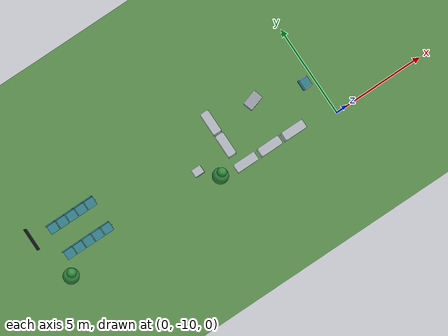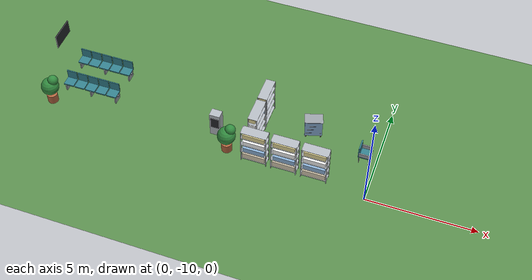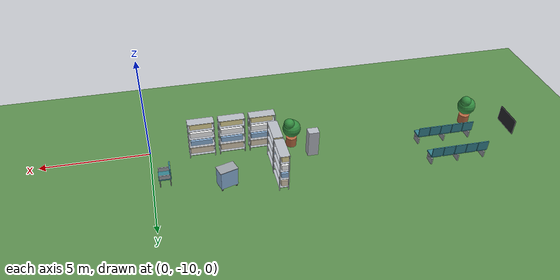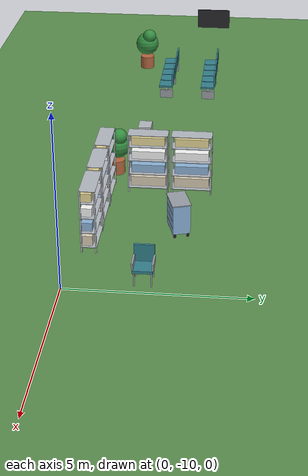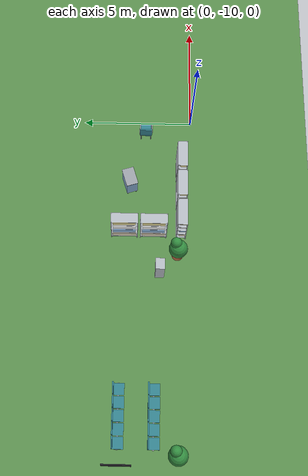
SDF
<sdf version="1.6">
 <world name="hospital">
  <include><uri>model://sun</uri></include>
  <model name="ground_plane">
   <static>true</static>
   <link name="link">
    <collision name="collision">
     <geometry><plane><normal>0 0 1</normal><size>100 100</size></plane></geometry>
     <surface>
      <contact><collide_bitmask>0xffff</collide_bitmask></contact>
      <friction><ode><mu>100</mu><mu2>50</mu2></ode></friction>
     </surface>
    </collision>
    <visual name="visual">
     <cast_shadows>false</cast_shadows>
     <geometry><plane><normal>0 0 1</normal><size>100 100</size></plane></geometry>
     <material>
      <ambient>0.35 0.55 0.3 1</ambient>
      <diffuse>0.35 0.55 0.3 1</diffuse>
      <specular>0 0 0 1</specular>
     </material>
    </visual>
   </link>
  </model>
  <model name="visitor_chair_S2">
   <static>true</static>
   <pose>-0.55 -7.9 0 0 0 1.5708</pose>
   <link name="link">
    <collision name="c0">
     <pose>-0.23 -0.23 0.2 0 0 0</pose>
     <geometry><cylinder><radius>0.02</radius><length>0.4</length></cylinder></geometry>
    </collision>
    <visual name="v0">
     <pose>-0.23 -0.23 0.2 0 0 0</pose>
     <geometry><cylinder><radius>0.02</radius><length>0.4</length></cylinder></geometry>
     <material>
      <ambient>0.6 0.62 0.65 1</ambient>
      <diffuse>0.6 0.62 0.65 1</diffuse>
      <specular>0.1 0.1 0.1 1</specular>
     </material>
    </visual>
    <collision name="c1">
     <pose>-0.23 0.23 0.2 0 0 0</pose>
     <geometry><cylinder><radius>0.02</radius><length>0.4</length></cylinder></geometry>
    </collision>
    <visual name="v1">
     <pose>-0.23 0.23 0.2 0 0 0</pose>
     <geometry><cylinder><radius>0.02</radius><length>0.4</length></cylinder></geometry>
     <material>
      <ambient>0.6 0.62 0.65 1</ambient>
      <diffuse>0.6 0.62 0.65 1</diffuse>
      <specular>0.1 0.1 0.1 1</specular>
     </material>
    </visual>
    <collision name="c2">
     <pose>0.23 -0.23 0.2 0 0 0</pose>
     <geometry><cylinder><radius>0.02</radius><length>0.4</length></cylinder></geometry>
    </collision>
    <visual name="v2">
     <pose>0.23 -0.23 0.2 0 0 0</pose>
     <geometry><cylinder><radius>0.02</radius><length>0.4</length></cylinder></geometry>
     <material>
      <ambient>0.6 0.62 0.65 1</ambient>
      <diffuse>0.6 0.62 0.65 1</diffuse>
      <specular>0.1 0.1 0.1 1</specular>
     </material>
    </visual>
    <collision name="c3">
     <pose>0.23 0.23 0.2 0 0 0</pose>
     <geometry><cylinder><radius>0.02</radius><length>0.4</length></cylinder></geometry>
    </collision>
    <visual name="v3">
     <pose>0.23 0.23 0.2 0 0 0</pose>
     <geometry><cylinder><radius>0.02</radius><length>0.4</length></cylinder></geometry>
     <material>
      <ambient>0.6 0.62 0.65 1</ambient>
      <diffuse>0.6 0.62 0.65 1</diffuse>
      <specular>0.1 0.1 0.1 1</specular>
     </material>
    </visual>
    <visual name="v4">
     <pose>0 0 0.44 0 0 0</pose>
     <geometry><box><size>0.55 0.55 0.08</size></box></geometry>
     <material>
      <ambient>0.2 0.5 0.55 1</ambient>
      <diffuse>0.2 0.5 0.55 1</diffuse>
      <specular>0.1 0.1 0.1 1</specular>
     </material>
    </visual>
    <visual name="v5">
     <pose>0 0.25 0.73 0 0 0</pose>
     <geometry><box><size>0.55 0.06 0.5</size></box></geometry>
     <material>
      <ambient>0.2 0.5 0.55 1</ambient>
      <diffuse>0.2 0.5 0.55 1</diffuse>
      <specular>0.1 0.1 0.1 1</specular>
     </material>
    </visual>
    <visual name="v6">
     <pose>-0.27 0 0.58 0 0 0</pose>
     <geometry><box><size>0.05 0.5 0.2</size></box></geometry>
     <material>
      <ambient>0.6 0.62 0.65 1</ambient>
      <diffuse>0.6 0.62 0.65 1</diffuse>
      <specular>0.1 0.1 0.1 1</specular>
     </material>
    </visual>
    <visual name="v7">
     <pose>0.27 0 0.58 0 0 0</pose>
     <geometry><box><size>0.05 0.5 0.2</size></box></geometry>
     <material>
      <ambient>0.6 0.62 0.65 1</ambient>
      <diffuse>0.6 0.62 0.65 1</diffuse>
      <specular>0.1 0.1 0.1 1</specular>
     </material>
    </visual>
   </link>
  </model>
  <model name="storage_shelf_back_0">
   <static>true</static>
   <pose>-5.2 -9.55 0 0 0 3.1416</pose>
   <link name="link">
    <collision name="c0">
     <pose>-0.58 -0.2 0.95 0 0 0</pose>
     <geometry><box><size>0.04 0.04 1.9</size></box></geometry>
    </collision>
    <visual name="v0">
     <pose>-0.58 -0.2 0.95 0 0 0</pose>
     <geometry><box><size>0.04 0.04 1.9</size></box></geometry>
     <material>
      <ambient>0.7 0.72 0.75 1</ambient>
      <diffuse>0.7 0.72 0.75 1</diffuse>
      <specular>0.1 0.1 0.1 1</specular>
     </material>
    </visual>
    <collision name="c1">
     <pose>-0.58 0.2 0.95 0 0 0</pose>
     <geometry><box><size>0.04 0.04 1.9</size></box></geometry>
    </collision>
    <visual name="v1">
     <pose>-0.58 0.2 0.95 0 0 0</pose>
     <geometry><box><size>0.04 0.04 1.9</size></box></geometry>
     <material>
      <ambient>0.7 0.72 0.75 1</ambient>
      <diffuse>0.7 0.72 0.75 1</diffuse>
      <specular>0.1 0.1 0.1 1</specular>
     </material>
    </visual>
    <collision name="c2">
     <pose>0.58 -0.2 0.95 0 0 0</pose>
     <geometry><box><size>0.04 0.04 1.9</size></box></geometry>
    </collision>
    <visual name="v2">
     <pose>0.58 -0.2 0.95 0 0 0</pose>
     <geometry><box><size>0.04 0.04 1.9</size></box></geometry>
     <material>
      <ambient>0.7 0.72 0.75 1</ambient>
      <diffuse>0.7 0.72 0.75 1</diffuse>
      <specular>0.1 0.1 0.1 1</specular>
     </material>
    </visual>
    <collision name="c3">
     <pose>0.58 0.2 0.95 0 0 0</pose>
     <geometry><box><size>0.04 0.04 1.9</size></box></geometry>
    </collision>
    <visual name="v3">
     <pose>0.58 0.2 0.95 0 0 0</pose>
     <geometry><box><size>0.04 0.04 1.9</size></box></geometry>
     <material>
      <ambient>0.7 0.72 0.75 1</ambient>
      <diffuse>0.7 0.72 0.75 1</diffuse>
      <specular>0.1 0.1 0.1 1</specular>
     </material>
    </visual>
    <collision name="c4">
     <pose>0 0 0.16 0 0 0</pose>
     <geometry><box><size>1.2 0.45 0.02</size></box></geometry>
    </collision>
    <visual name="v4">
     <pose>0 0 0.16 0 0 0</pose>
     <geometry><box><size>1.2 0.45 0.02</size></box></geometry>
     <material>
      <ambient>0.7 0.72 0.75 1</ambient>
      <diffuse>0.7 0.72 0.75 1</diffuse>
      <specular>0.1 0.1 0.1 1</specular>
     </material>
    </visual>
    <visual name="v5">
     <pose>0 0 0.61 0 0 0</pose>
     <geometry><box><size>1.2 0.45 0.02</size></box></geometry>
     <material>
      <ambient>0.7 0.72 0.75 1</ambient>
      <diffuse>0.7 0.72 0.75 1</diffuse>
      <specular>0.1 0.1 0.1 1</specular>
     </material>
    </visual>
    <visual name="v6">
     <pose>0 0 1.06 0 0 0</pose>
     <geometry><box><size>1.2 0.45 0.02</size></box></geometry>
     <material>
      <ambient>0.7 0.72 0.75 1</ambient>
      <diffuse>0.7 0.72 0.75 1</diffuse>
      <specular>0.1 0.1 0.1 1</specular>
     </material>
    </visual>
    <visual name="v7">
     <pose>0 0 1.51 0 0 0</pose>
     <geometry><box><size>1.2 0.45 0.02</size></box></geometry>
     <material>
      <ambient>0.7 0.72 0.75 1</ambient>
      <diffuse>0.7 0.72 0.75 1</diffuse>
      <specular>0.1 0.1 0.1 1</specular>
     </material>
    </visual>
    <visual name="v8">
     <pose>0 0 1.89 0 0 0</pose>
     <geometry><box><size>1.2 0.45 0.02</size></box></geometry>
     <material>
      <ambient>0.7 0.72 0.75 1</ambient>
      <diffuse>0.7 0.72 0.75 1</diffuse>
      <specular>0.1 0.1 0.1 1</specular>
     </material>
    </visual>
    <collision name="c9">
     <pose>0 0.05 0.32 0 0 0</pose>
     <geometry><box><size>1.05 0.3 0.3</size></box></geometry>
    </collision>
    <visual name="v9">
     <pose>0 0.05 0.32 0 0 0</pose>
     <geometry><box><size>1.05 0.3 0.3</size></box></geometry>
     <material>
      <ambient>0.85 0.8 0.7 1</ambient>
      <diffuse>0.85 0.8 0.7 1</diffuse>
      <specular>0.1 0.1 0.1 1</specular>
     </material>
    </visual>
    <visual name="v10">
     <pose>0 0.05 0.745 0 0 0</pose>
     <geometry><box><size>1 0.3 0.25</size></box></geometry>
     <material>
      <ambient>0.55 0.7 0.85 1</ambient>
      <diffuse>0.55 0.7 0.85 1</diffuse>
      <specular>0.1 0.1 0.1 1</specular>
     </material>
    </visual>
    <visual name="v11">
     <pose>0 0.05 1.195 0 0 0</pose>
     <geometry><box><size>1 0.3 0.25</size></box></geometry>
     <material>
      <ambient>0.97 0.97 0.97 1</ambient>
      <diffuse>0.97 0.97 0.97 1</diffuse>
      <specular>0.1 0.1 0.1 1</specular>
     </material>
    </visual>
    <visual name="v12">
     <pose>0 0.05 1.645 0 0 0</pose>
     <geometry><box><size>1 0.3 0.25</size></box></geometry>
     <material>
      <ambient>0.9 0.85 0.6 1</ambient>
      <diffuse>0.9 0.85 0.6 1</diffuse>
      <specular>0.1 0.1 0.1 1</specular>
     </material>
    </visual>
   </link>
  </model>
  <model name="storage_shelf_back_1">
   <static>true</static>
   <pose>-3.8 -9.55 0 0 0 3.1416</pose>
   <link name="link">
    <collision name="c0">
     <pose>-0.58 -0.2 0.95 0 0 0</pose>
     <geometry><box><size>0.04 0.04 1.9</size></box></geometry>
    </collision>
    <visual name="v0">
     <pose>-0.58 -0.2 0.95 0 0 0</pose>
     <geometry><box><size>0.04 0.04 1.9</size></box></geometry>
     <material>
      <ambient>0.7 0.72 0.75 1</ambient>
      <diffuse>0.7 0.72 0.75 1</diffuse>
      <specular>0.1 0.1 0.1 1</specular>
     </material>
    </visual>
    <collision name="c1">
     <pose>-0.58 0.2 0.95 0 0 0</pose>
     <geometry><box><size>0.04 0.04 1.9</size></box></geometry>
    </collision>
    <visual name="v1">
     <pose>-0.58 0.2 0.95 0 0 0</pose>
     <geometry><box><size>0.04 0.04 1.9</size></box></geometry>
     <material>
      <ambient>0.7 0.72 0.75 1</ambient>
      <diffuse>0.7 0.72 0.75 1</diffuse>
      <specular>0.1 0.1 0.1 1</specular>
     </material>
    </visual>
    <collision name="c2">
     <pose>0.58 -0.2 0.95 0 0 0</pose>
     <geometry><box><size>0.04 0.04 1.9</size></box></geometry>
    </collision>
    <visual name="v2">
     <pose>0.58 -0.2 0.95 0 0 0</pose>
     <geometry><box><size>0.04 0.04 1.9</size></box></geometry>
     <material>
      <ambient>0.7 0.72 0.75 1</ambient>
      <diffuse>0.7 0.72 0.75 1</diffuse>
      <specular>0.1 0.1 0.1 1</specular>
     </material>
    </visual>
    <collision name="c3">
     <pose>0.58 0.2 0.95 0 0 0</pose>
     <geometry><box><size>0.04 0.04 1.9</size></box></geometry>
    </collision>
    <visual name="v3">
     <pose>0.58 0.2 0.95 0 0 0</pose>
     <geometry><box><size>0.04 0.04 1.9</size></box></geometry>
     <material>
      <ambient>0.7 0.72 0.75 1</ambient>
      <diffuse>0.7 0.72 0.75 1</diffuse>
      <specular>0.1 0.1 0.1 1</specular>
     </material>
    </visual>
    <collision name="c4">
     <pose>0 0 0.16 0 0 0</pose>
     <geometry><box><size>1.2 0.45 0.02</size></box></geometry>
    </collision>
    <visual name="v4">
     <pose>0 0 0.16 0 0 0</pose>
     <geometry><box><size>1.2 0.45 0.02</size></box></geometry>
     <material>
      <ambient>0.7 0.72 0.75 1</ambient>
      <diffuse>0.7 0.72 0.75 1</diffuse>
      <specular>0.1 0.1 0.1 1</specular>
     </material>
    </visual>
    <visual name="v5">
     <pose>0 0 0.61 0 0 0</pose>
     <geometry><box><size>1.2 0.45 0.02</size></box></geometry>
     <material>
      <ambient>0.7 0.72 0.75 1</ambient>
      <diffuse>0.7 0.72 0.75 1</diffuse>
      <specular>0.1 0.1 0.1 1</specular>
     </material>
    </visual>
    <visual name="v6">
     <pose>0 0 1.06 0 0 0</pose>
     <geometry><box><size>1.2 0.45 0.02</size></box></geometry>
     <material>
      <ambient>0.7 0.72 0.75 1</ambient>
      <diffuse>0.7 0.72 0.75 1</diffuse>
      <specular>0.1 0.1 0.1 1</specular>
     </material>
    </visual>
    <visual name="v7">
     <pose>0 0 1.51 0 0 0</pose>
     <geometry><box><size>1.2 0.45 0.02</size></box></geometry>
     <material>
      <ambient>0.7 0.72 0.75 1</ambient>
      <diffuse>0.7 0.72 0.75 1</diffuse>
      <specular>0.1 0.1 0.1 1</specular>
     </material>
    </visual>
    <visual name="v8">
     <pose>0 0 1.89 0 0 0</pose>
     <geometry><box><size>1.2 0.45 0.02</size></box></geometry>
     <material>
      <ambient>0.7 0.72 0.75 1</ambient>
      <diffuse>0.7 0.72 0.75 1</diffuse>
      <specular>0.1 0.1 0.1 1</specular>
     </material>
    </visual>
    <collision name="c9">
     <pose>0 0.05 0.32 0 0 0</pose>
     <geometry><box><size>1.05 0.3 0.3</size></box></geometry>
    </collision>
    <visual name="v9">
     <pose>0 0.05 0.32 0 0 0</pose>
     <geometry><box><size>1.05 0.3 0.3</size></box></geometry>
     <material>
      <ambient>0.85 0.8 0.7 1</ambient>
      <diffuse>0.85 0.8 0.7 1</diffuse>
      <specular>0.1 0.1 0.1 1</specular>
     </material>
    </visual>
    <visual name="v10">
     <pose>0 0.05 0.745 0 0 0</pose>
     <geometry><box><size>1 0.3 0.25</size></box></geometry>
     <material>
      <ambient>0.55 0.7 0.85 1</ambient>
      <diffuse>0.55 0.7 0.85 1</diffuse>
      <specular>0.1 0.1 0.1 1</specular>
     </material>
    </visual>
    <visual name="v11">
     <pose>0 0.05 1.195 0 0 0</pose>
     <geometry><box><size>1 0.3 0.25</size></box></geometry>
     <material>
      <ambient>0.97 0.97 0.97 1</ambient>
      <diffuse>0.97 0.97 0.97 1</diffuse>
      <specular>0.1 0.1 0.1 1</specular>
     </material>
    </visual>
    <visual name="v12">
     <pose>0 0.05 1.645 0 0 0</pose>
     <geometry><box><size>1 0.3 0.25</size></box></geometry>
     <material>
      <ambient>0.9 0.85 0.6 1</ambient>
      <diffuse>0.9 0.85 0.6 1</diffuse>
      <specular>0.1 0.1 0.1 1</specular>
     </material>
    </visual>
   </link>
  </model>
  <model name="storage_shelf_back_2">
   <static>true</static>
   <pose>-2.4 -9.55 0 0 0 3.1416</pose>
   <link name="link">
    <collision name="c0">
     <pose>-0.58 -0.2 0.95 0 0 0</pose>
     <geometry><box><size>0.04 0.04 1.9</size></box></geometry>
    </collision>
    <visual name="v0">
     <pose>-0.58 -0.2 0.95 0 0 0</pose>
     <geometry><box><size>0.04 0.04 1.9</size></box></geometry>
     <material>
      <ambient>0.7 0.72 0.75 1</ambient>
      <diffuse>0.7 0.72 0.75 1</diffuse>
      <specular>0.1 0.1 0.1 1</specular>
     </material>
    </visual>
    <collision name="c1">
     <pose>-0.58 0.2 0.95 0 0 0</pose>
     <geometry><box><size>0.04 0.04 1.9</size></box></geometry>
    </collision>
    <visual name="v1">
     <pose>-0.58 0.2 0.95 0 0 0</pose>
     <geometry><box><size>0.04 0.04 1.9</size></box></geometry>
     <material>
      <ambient>0.7 0.72 0.75 1</ambient>
      <diffuse>0.7 0.72 0.75 1</diffuse>
      <specular>0.1 0.1 0.1 1</specular>
     </material>
    </visual>
    <collision name="c2">
     <pose>0.58 -0.2 0.95 0 0 0</pose>
     <geometry><box><size>0.04 0.04 1.9</size></box></geometry>
    </collision>
    <visual name="v2">
     <pose>0.58 -0.2 0.95 0 0 0</pose>
     <geometry><box><size>0.04 0.04 1.9</size></box></geometry>
     <material>
      <ambient>0.7 0.72 0.75 1</ambient>
      <diffuse>0.7 0.72 0.75 1</diffuse>
      <specular>0.1 0.1 0.1 1</specular>
     </material>
    </visual>
    <collision name="c3">
     <pose>0.58 0.2 0.95 0 0 0</pose>
     <geometry><box><size>0.04 0.04 1.9</size></box></geometry>
    </collision>
    <visual name="v3">
     <pose>0.58 0.2 0.95 0 0 0</pose>
     <geometry><box><size>0.04 0.04 1.9</size></box></geometry>
     <material>
      <ambient>0.7 0.72 0.75 1</ambient>
      <diffuse>0.7 0.72 0.75 1</diffuse>
      <specular>0.1 0.1 0.1 1</specular>
     </material>
    </visual>
    <collision name="c4">
     <pose>0 0 0.16 0 0 0</pose>
     <geometry><box><size>1.2 0.45 0.02</size></box></geometry>
    </collision>
    <visual name="v4">
     <pose>0 0 0.16 0 0 0</pose>
     <geometry><box><size>1.2 0.45 0.02</size></box></geometry>
     <material>
      <ambient>0.7 0.72 0.75 1</ambient>
      <diffuse>0.7 0.72 0.75 1</diffuse>
      <specular>0.1 0.1 0.1 1</specular>
     </material>
    </visual>
    <visual name="v5">
     <pose>0 0 0.61 0 0 0</pose>
     <geometry><box><size>1.2 0.45 0.02</size></box></geometry>
     <material>
      <ambient>0.7 0.72 0.75 1</ambient>
      <diffuse>0.7 0.72 0.75 1</diffuse>
      <specular>0.1 0.1 0.1 1</specular>
     </material>
    </visual>
    <visual name="v6">
     <pose>0 0 1.06 0 0 0</pose>
     <geometry><box><size>1.2 0.45 0.02</size></box></geometry>
     <material>
      <ambient>0.7 0.72 0.75 1</ambient>
      <diffuse>0.7 0.72 0.75 1</diffuse>
      <specular>0.1 0.1 0.1 1</specular>
     </material>
    </visual>
    <visual name="v7">
     <pose>0 0 1.51 0 0 0</pose>
     <geometry><box><size>1.2 0.45 0.02</size></box></geometry>
     <material>
      <ambient>0.7 0.72 0.75 1</ambient>
      <diffuse>0.7 0.72 0.75 1</diffuse>
      <specular>0.1 0.1 0.1 1</specular>
     </material>
    </visual>
    <visual name="v8">
     <pose>0 0 1.89 0 0 0</pose>
     <geometry><box><size>1.2 0.45 0.02</size></box></geometry>
     <material>
      <ambient>0.7 0.72 0.75 1</ambient>
      <diffuse>0.7 0.72 0.75 1</diffuse>
      <specular>0.1 0.1 0.1 1</specular>
     </material>
    </visual>
    <collision name="c9">
     <pose>0 0.05 0.32 0 0 0</pose>
     <geometry><box><size>1.05 0.3 0.3</size></box></geometry>
    </collision>
    <visual name="v9">
     <pose>0 0.05 0.32 0 0 0</pose>
     <geometry><box><size>1.05 0.3 0.3</size></box></geometry>
     <material>
      <ambient>0.85 0.8 0.7 1</ambient>
      <diffuse>0.85 0.8 0.7 1</diffuse>
      <specular>0.1 0.1 0.1 1</specular>
     </material>
    </visual>
    <visual name="v10">
     <pose>0 0.05 0.745 0 0 0</pose>
     <geometry><box><size>1 0.3 0.25</size></box></geometry>
     <material>
      <ambient>0.55 0.7 0.85 1</ambient>
      <diffuse>0.55 0.7 0.85 1</diffuse>
      <specular>0.1 0.1 0.1 1</specular>
     </material>
    </visual>
    <visual name="v11">
     <pose>0 0.05 1.195 0 0 0</pose>
     <geometry><box><size>1 0.3 0.25</size></box></geometry>
     <material>
      <ambient>0.97 0.97 0.97 1</ambient>
      <diffuse>0.97 0.97 0.97 1</diffuse>
      <specular>0.1 0.1 0.1 1</specular>
     </material>
    </visual>
    <visual name="v12">
     <pose>0 0.05 1.645 0 0 0</pose>
     <geometry><box><size>1 0.3 0.25</size></box></geometry>
     <material>
      <ambient>0.9 0.85 0.6 1</ambient>
      <diffuse>0.9 0.85 0.6 1</diffuse>
      <specular>0.1 0.1 0.1 1</specular>
     </material>
    </visual>
   </link>
  </model>
  <model name="storage_shelf_side_0">
   <static>true</static>
   <pose>-5.55 -8.3 0 0 0 1.5708</pose>
   <link name="link">
    <collision name="c0">
     <pose>-0.58 -0.2 0.95 0 0 0</pose>
     <geometry><box><size>0.04 0.04 1.9</size></box></geometry>
    </collision>
    <visual name="v0">
     <pose>-0.58 -0.2 0.95 0 0 0</pose>
     <geometry><box><size>0.04 0.04 1.9</size></box></geometry>
     <material>
      <ambient>0.7 0.72 0.75 1</ambient>
      <diffuse>0.7 0.72 0.75 1</diffuse>
      <specular>0.1 0.1 0.1 1</specular>
     </material>
    </visual>
    <collision name="c1">
     <pose>-0.58 0.2 0.95 0 0 0</pose>
     <geometry><box><size>0.04 0.04 1.9</size></box></geometry>
    </collision>
    <visual name="v1">
     <pose>-0.58 0.2 0.95 0 0 0</pose>
     <geometry><box><size>0.04 0.04 1.9</size></box></geometry>
     <material>
      <ambient>0.7 0.72 0.75 1</ambient>
      <diffuse>0.7 0.72 0.75 1</diffuse>
      <specular>0.1 0.1 0.1 1</specular>
     </material>
    </visual>
    <collision name="c2">
     <pose>0.58 -0.2 0.95 0 0 0</pose>
     <geometry><box><size>0.04 0.04 1.9</size></box></geometry>
    </collision>
    <visual name="v2">
     <pose>0.58 -0.2 0.95 0 0 0</pose>
     <geometry><box><size>0.04 0.04 1.9</size></box></geometry>
     <material>
      <ambient>0.7 0.72 0.75 1</ambient>
      <diffuse>0.7 0.72 0.75 1</diffuse>
      <specular>0.1 0.1 0.1 1</specular>
     </material>
    </visual>
    <collision name="c3">
     <pose>0.58 0.2 0.95 0 0 0</pose>
     <geometry><box><size>0.04 0.04 1.9</size></box></geometry>
    </collision>
    <visual name="v3">
     <pose>0.58 0.2 0.95 0 0 0</pose>
     <geometry><box><size>0.04 0.04 1.9</size></box></geometry>
     <material>
      <ambient>0.7 0.72 0.75 1</ambient>
      <diffuse>0.7 0.72 0.75 1</diffuse>
      <specular>0.1 0.1 0.1 1</specular>
     </material>
    </visual>
    <collision name="c4">
     <pose>0 0 0.16 0 0 0</pose>
     <geometry><box><size>1.2 0.45 0.02</size></box></geometry>
    </collision>
    <visual name="v4">
     <pose>0 0 0.16 0 0 0</pose>
     <geometry><box><size>1.2 0.45 0.02</size></box></geometry>
     <material>
      <ambient>0.7 0.72 0.75 1</ambient>
      <diffuse>0.7 0.72 0.75 1</diffuse>
      <specular>0.1 0.1 0.1 1</specular>
     </material>
    </visual>
    <visual name="v5">
     <pose>0 0 0.61 0 0 0</pose>
     <geometry><box><size>1.2 0.45 0.02</size></box></geometry>
     <material>
      <ambient>0.7 0.72 0.75 1</ambient>
      <diffuse>0.7 0.72 0.75 1</diffuse>
      <specular>0.1 0.1 0.1 1</specular>
     </material>
    </visual>
    <visual name="v6">
     <pose>0 0 1.06 0 0 0</pose>
     <geometry><box><size>1.2 0.45 0.02</size></box></geometry>
     <material>
      <ambient>0.7 0.72 0.75 1</ambient>
      <diffuse>0.7 0.72 0.75 1</diffuse>
      <specular>0.1 0.1 0.1 1</specular>
     </material>
    </visual>
    <visual name="v7">
     <pose>0 0 1.51 0 0 0</pose>
     <geometry><box><size>1.2 0.45 0.02</size></box></geometry>
     <material>
      <ambient>0.7 0.72 0.75 1</ambient>
      <diffuse>0.7 0.72 0.75 1</diffuse>
      <specular>0.1 0.1 0.1 1</specular>
     </material>
    </visual>
    <visual name="v8">
     <pose>0 0 1.89 0 0 0</pose>
     <geometry><box><size>1.2 0.45 0.02</size></box></geometry>
     <material>
      <ambient>0.7 0.72 0.75 1</ambient>
      <diffuse>0.7 0.72 0.75 1</diffuse>
      <specular>0.1 0.1 0.1 1</specular>
     </material>
    </visual>
    <collision name="c9">
     <pose>0 0.05 0.32 0 0 0</pose>
     <geometry><box><size>1.05 0.3 0.3</size></box></geometry>
    </collision>
    <visual name="v9">
     <pose>0 0.05 0.32 0 0 0</pose>
     <geometry><box><size>1.05 0.3 0.3</size></box></geometry>
     <material>
      <ambient>0.85 0.8 0.7 1</ambient>
      <diffuse>0.85 0.8 0.7 1</diffuse>
      <specular>0.1 0.1 0.1 1</specular>
     </material>
    </visual>
    <visual name="v10">
     <pose>0 0.05 0.745 0 0 0</pose>
     <geometry><box><size>1 0.3 0.25</size></box></geometry>
     <material>
      <ambient>0.55 0.7 0.85 1</ambient>
      <diffuse>0.55 0.7 0.85 1</diffuse>
      <specular>0.1 0.1 0.1 1</specular>
     </material>
    </visual>
    <visual name="v11">
     <pose>0 0.05 1.195 0 0 0</pose>
     <geometry><box><size>1 0.3 0.25</size></box></geometry>
     <material>
      <ambient>0.97 0.97 0.97 1</ambient>
      <diffuse>0.97 0.97 0.97 1</diffuse>
      <specular>0.1 0.1 0.1 1</specular>
     </material>
    </visual>
    <visual name="v12">
     <pose>0 0.05 1.645 0 0 0</pose>
     <geometry><box><size>1 0.3 0.25</size></box></geometry>
     <material>
      <ambient>0.9 0.85 0.6 1</ambient>
      <diffuse>0.9 0.85 0.6 1</diffuse>
      <specular>0.1 0.1 0.1 1</specular>
     </material>
    </visual>
   </link>
  </model>
  <model name="storage_shelf_side_1">
   <static>true</static>
   <pose>-5.55 -7 0 0 0 1.5708</pose>
   <link name="link">
    <collision name="c0">
     <pose>-0.58 -0.2 0.95 0 0 0</pose>
     <geometry><box><size>0.04 0.04 1.9</size></box></geometry>
    </collision>
    <visual name="v0">
     <pose>-0.58 -0.2 0.95 0 0 0</pose>
     <geometry><box><size>0.04 0.04 1.9</size></box></geometry>
     <material>
      <ambient>0.7 0.72 0.75 1</ambient>
      <diffuse>0.7 0.72 0.75 1</diffuse>
      <specular>0.1 0.1 0.1 1</specular>
     </material>
    </visual>
    <collision name="c1">
     <pose>-0.58 0.2 0.95 0 0 0</pose>
     <geometry><box><size>0.04 0.04 1.9</size></box></geometry>
    </collision>
    <visual name="v1">
     <pose>-0.58 0.2 0.95 0 0 0</pose>
     <geometry><box><size>0.04 0.04 1.9</size></box></geometry>
     <material>
      <ambient>0.7 0.72 0.75 1</ambient>
      <diffuse>0.7 0.72 0.75 1</diffuse>
      <specular>0.1 0.1 0.1 1</specular>
     </material>
    </visual>
    <collision name="c2">
     <pose>0.58 -0.2 0.95 0 0 0</pose>
     <geometry><box><size>0.04 0.04 1.9</size></box></geometry>
    </collision>
    <visual name="v2">
     <pose>0.58 -0.2 0.95 0 0 0</pose>
     <geometry><box><size>0.04 0.04 1.9</size></box></geometry>
     <material>
      <ambient>0.7 0.72 0.75 1</ambient>
      <diffuse>0.7 0.72 0.75 1</diffuse>
      <specular>0.1 0.1 0.1 1</specular>
     </material>
    </visual>
    <collision name="c3">
     <pose>0.58 0.2 0.95 0 0 0</pose>
     <geometry><box><size>0.04 0.04 1.9</size></box></geometry>
    </collision>
    <visual name="v3">
     <pose>0.58 0.2 0.95 0 0 0</pose>
     <geometry><box><size>0.04 0.04 1.9</size></box></geometry>
     <material>
      <ambient>0.7 0.72 0.75 1</ambient>
      <diffuse>0.7 0.72 0.75 1</diffuse>
      <specular>0.1 0.1 0.1 1</specular>
     </material>
    </visual>
    <collision name="c4">
     <pose>0 0 0.16 0 0 0</pose>
     <geometry><box><size>1.2 0.45 0.02</size></box></geometry>
    </collision>
    <visual name="v4">
     <pose>0 0 0.16 0 0 0</pose>
     <geometry><box><size>1.2 0.45 0.02</size></box></geometry>
     <material>
      <ambient>0.7 0.72 0.75 1</ambient>
      <diffuse>0.7 0.72 0.75 1</diffuse>
      <specular>0.1 0.1 0.1 1</specular>
     </material>
    </visual>
    <visual name="v5">
     <pose>0 0 0.61 0 0 0</pose>
     <geometry><box><size>1.2 0.45 0.02</size></box></geometry>
     <material>
      <ambient>0.7 0.72 0.75 1</ambient>
      <diffuse>0.7 0.72 0.75 1</diffuse>
      <specular>0.1 0.1 0.1 1</specular>
     </material>
    </visual>
    <visual name="v6">
     <pose>0 0 1.06 0 0 0</pose>
     <geometry><box><size>1.2 0.45 0.02</size></box></geometry>
     <material>
      <ambient>0.7 0.72 0.75 1</ambient>
      <diffuse>0.7 0.72 0.75 1</diffuse>
      <specular>0.1 0.1 0.1 1</specular>
     </material>
    </visual>
    <visual name="v7">
     <pose>0 0 1.51 0 0 0</pose>
     <geometry><box><size>1.2 0.45 0.02</size></box></geometry>
     <material>
      <ambient>0.7 0.72 0.75 1</ambient>
      <diffuse>0.7 0.72 0.75 1</diffuse>
      <specular>0.1 0.1 0.1 1</specular>
     </material>
    </visual>
    <visual name="v8">
     <pose>0 0 1.89 0 0 0</pose>
     <geometry><box><size>1.2 0.45 0.02</size></box></geometry>
     <material>
      <ambient>0.7 0.72 0.75 1</ambient>
      <diffuse>0.7 0.72 0.75 1</diffuse>
      <specular>0.1 0.1 0.1 1</specular>
     </material>
    </visual>
    <collision name="c9">
     <pose>0 0.05 0.32 0 0 0</pose>
     <geometry><box><size>1.05 0.3 0.3</size></box></geometry>
    </collision>
    <visual name="v9">
     <pose>0 0.05 0.32 0 0 0</pose>
     <geometry><box><size>1.05 0.3 0.3</size></box></geometry>
     <material>
      <ambient>0.85 0.8 0.7 1</ambient>
      <diffuse>0.85 0.8 0.7 1</diffuse>
      <specular>0.1 0.1 0.1 1</specular>
     </material>
    </visual>
    <visual name="v10">
     <pose>0 0.05 0.745 0 0 0</pose>
     <geometry><box><size>1 0.3 0.25</size></box></geometry>
     <material>
      <ambient>0.55 0.7 0.85 1</ambient>
      <diffuse>0.55 0.7 0.85 1</diffuse>
      <specular>0.1 0.1 0.1 1</specular>
     </material>
    </visual>
    <visual name="v11">
     <pose>0 0.05 1.195 0 0 0</pose>
     <geometry><box><size>1 0.3 0.25</size></box></geometry>
     <material>
      <ambient>0.97 0.97 0.97 1</ambient>
      <diffuse>0.97 0.97 0.97 1</diffuse>
      <specular>0.1 0.1 0.1 1</specular>
     </material>
    </visual>
    <visual name="v12">
     <pose>0 0.05 1.645 0 0 0</pose>
     <geometry><box><size>1 0.3 0.25</size></box></geometry>
     <material>
      <ambient>0.9 0.85 0.6 1</ambient>
      <diffuse>0.9 0.85 0.6 1</diffuse>
      <specular>0.1 0.1 0.1 1</specular>
     </material>
    </visual>
   </link>
  </model>
  <model name="supply_cart_S1">
   <static>true</static>
   <pose>-3.2 -7.2 0 0 0 0.3</pose>
   <link name="link">
    <collision name="c0">
     <pose>-0.34 -0.19 0.06 0 0 0</pose>
     <geometry><cylinder><radius>0.04</radius><length>0.12</length></cylinder></geometry>
    </collision>
    <visual name="v0">
     <pose>-0.34 -0.19 0.06 0 0 0</pose>
     <geometry><cylinder><radius>0.04</radius><length>0.12</length></cylinder></geometry>
     <material>
      <ambient>0.15 0.15 0.17 1</ambient>
      <diffuse>0.15 0.15 0.17 1</diffuse>
      <specular>0.1 0.1 0.1 1</specular>
     </material>
    </visual>
    <collision name="c1">
     <pose>-0.34 0.19 0.06 0 0 0</pose>
     <geometry><cylinder><radius>0.04</radius><length>0.12</length></cylinder></geometry>
    </collision>
    <visual name="v1">
     <pose>-0.34 0.19 0.06 0 0 0</pose>
     <geometry><cylinder><radius>0.04</radius><length>0.12</length></cylinder></geometry>
     <material>
      <ambient>0.15 0.15 0.17 1</ambient>
      <diffuse>0.15 0.15 0.17 1</diffuse>
      <specular>0.1 0.1 0.1 1</specular>
     </material>
    </visual>
    <collision name="c2">
     <pose>0.34 -0.19 0.06 0 0 0</pose>
     <geometry><cylinder><radius>0.04</radius><length>0.12</length></cylinder></geometry>
    </collision>
    <visual name="v2">
     <pose>0.34 -0.19 0.06 0 0 0</pose>
     <geometry><cylinder><radius>0.04</radius><length>0.12</length></cylinder></geometry>
     <material>
      <ambient>0.15 0.15 0.17 1</ambient>
      <diffuse>0.15 0.15 0.17 1</diffuse>
      <specular>0.1 0.1 0.1 1</specular>
     </material>
    </visual>
    <collision name="c3">
     <pose>0.34 0.19 0.06 0 0 0</pose>
     <geometry><cylinder><radius>0.04</radius><length>0.12</length></cylinder></geometry>
    </collision>
    <visual name="v3">
     <pose>0.34 0.19 0.06 0 0 0</pose>
     <geometry><cylinder><radius>0.04</radius><length>0.12</length></cylinder></geometry>
     <material>
      <ambient>0.15 0.15 0.17 1</ambient>
      <diffuse>0.15 0.15 0.17 1</diffuse>
      <specular>0.1 0.1 0.1 1</specular>
     </material>
    </visual>
    <collision name="c4">
     <pose>0 0 0.56 0 0 0</pose>
     <geometry><box><size>0.8 0.5 0.88</size></box></geometry>
    </collision>
    <visual name="v4">
     <pose>0 0 0.56 0 0 0</pose>
     <geometry><box><size>0.8 0.5 0.88</size></box></geometry>
     <material>
      <ambient>0.55 0.7 0.85 1</ambient>
      <diffuse>0.55 0.7 0.85 1</diffuse>
      <specular>0.1 0.1 0.1 1</specular>
     </material>
    </visual>
    <visual name="v5">
     <pose>0 0 1.015 0 0 0</pose>
     <geometry><box><size>0.84 0.54 0.03</size></box></geometry>
     <material>
      <ambient>0.6 0.62 0.65 1</ambient>
      <diffuse>0.6 0.62 0.65 1</diffuse>
      <specular>0.1 0.1 0.1 1</specular>
     </material>
    </visual>
    <visual name="v6">
     <pose>0 -0.253 0.305 0 0 0</pose>
     <geometry><box><size>0.7 0.005 0.01</size></box></geometry>
     <material>
      <ambient>0.15 0.15 0.17 1</ambient>
      <diffuse>0.15 0.15 0.17 1</diffuse>
      <specular>0.1 0.1 0.1 1</specular>
     </material>
    </visual>
    <visual name="v7">
     <pose>0 -0.253 0.525 0 0 0</pose>
     <geometry><box><size>0.7 0.005 0.01</size></box></geometry>
     <material>
      <ambient>0.15 0.15 0.17 1</ambient>
      <diffuse>0.15 0.15 0.17 1</diffuse>
      <specular>0.1 0.1 0.1 1</specular>
     </material>
    </visual>
    <visual name="v8">
     <pose>0 -0.253 0.745 0 0 0</pose>
     <geometry><box><size>0.7 0.005 0.01</size></box></geometry>
     <material>
      <ambient>0.15 0.15 0.17 1</ambient>
      <diffuse>0.15 0.15 0.17 1</diffuse>
      <specular>0.1 0.1 0.1 1</specular>
     </material>
    </visual>
   </link>
  </model>
  <model name="waiting_seats_0">
   <static>true</static>
   <pose>-13.8 -8.4 0 0 0 0</pose>
   <link name="link">
    <collision name="c0">
     <pose>0 0 0.33 0 0 0</pose>
     <geometry><box><size>2.75 0.08 0.06</size></box></geometry>
    </collision>
    <visual name="v0">
     <pose>0 0 0.33 0 0 0</pose>
     <geometry><box><size>2.75 0.08 0.06</size></box></geometry>
     <material>
      <ambient>0.6 0.62 0.65 1</ambient>
      <diffuse>0.6 0.62 0.65 1</diffuse>
      <specular>0.1 0.1 0.1 1</specular>
     </material>
    </visual>
    <collision name="c1">
     <pose>-1.275 0 0.15 0 0 0</pose>
     <geometry><box><size>0.06 0.45 0.3</size></box></geometry>
    </collision>
    <visual name="v1">
     <pose>-1.275 0 0.15 0 0 0</pose>
     <geometry><box><size>0.06 0.45 0.3</size></box></geometry>
     <material>
      <ambient>0.6 0.62 0.65 1</ambient>
      <diffuse>0.6 0.62 0.65 1</diffuse>
      <specular>0.1 0.1 0.1 1</specular>
     </material>
    </visual>
    <collision name="c2">
     <pose>0 0 0.15 0 0 0</pose>
     <geometry><box><size>0.06 0.45 0.3</size></box></geometry>
    </collision>
    <visual name="v2">
     <pose>0 0 0.15 0 0 0</pose>
     <geometry><box><size>0.06 0.45 0.3</size></box></geometry>
     <material>
      <ambient>0.6 0.62 0.65 1</ambient>
      <diffuse>0.6 0.62 0.65 1</diffuse>
      <specular>0.1 0.1 0.1 1</specular>
     </material>
    </visual>
    <collision name="c3">
     <pose>1.275 0 0.15 0 0 0</pose>
     <geometry><box><size>0.06 0.45 0.3</size></box></geometry>
    </collision>
    <visual name="v3">
     <pose>1.275 0 0.15 0 0 0</pose>
     <geometry><box><size>0.06 0.45 0.3</size></box></geometry>
     <material>
      <ambient>0.6 0.62 0.65 1</ambient>
      <diffuse>0.6 0.62 0.65 1</diffuse>
      <specular>0.1 0.1 0.1 1</specular>
     </material>
    </visual>
    <visual name="v4">
     <pose>-1.1 -0.02 0.435 0 0 0</pose>
     <geometry><box><size>0.5 0.48 0.07</size></box></geometry>
     <material>
      <ambient>0.2 0.5 0.55 1</ambient>
      <diffuse>0.2 0.5 0.55 1</diffuse>
      <specular>0.1 0.1 0.1 1</specular>
     </material>
    </visual>
    <visual name="v5">
     <pose>-1.1 0.22 0.695 0 0 0</pose>
     <geometry><box><size>0.5 0.05 0.45</size></box></geometry>
     <material>
      <ambient>0.2 0.5 0.55 1</ambient>
      <diffuse>0.2 0.5 0.55 1</diffuse>
      <specular>0.1 0.1 0.1 1</specular>
     </material>
    </visual>
    <visual name="v6">
     <pose>-0.55 -0.02 0.435 0 0 0</pose>
     <geometry><box><size>0.5 0.48 0.07</size></box></geometry>
     <material>
      <ambient>0.2 0.5 0.55 1</ambient>
      <diffuse>0.2 0.5 0.55 1</diffuse>
      <specular>0.1 0.1 0.1 1</specular>
     </material>
    </visual>
    <visual name="v7">
     <pose>-0.55 0.22 0.695 0 0 0</pose>
     <geometry><box><size>0.5 0.05 0.45</size></box></geometry>
     <material>
      <ambient>0.2 0.5 0.55 1</ambient>
      <diffuse>0.2 0.5 0.55 1</diffuse>
      <specular>0.1 0.1 0.1 1</specular>
     </material>
    </visual>
    <visual name="v8">
     <pose>0 -0.02 0.435 0 0 0</pose>
     <geometry><box><size>0.5 0.48 0.07</size></box></geometry>
     <material>
      <ambient>0.2 0.5 0.55 1</ambient>
      <diffuse>0.2 0.5 0.55 1</diffuse>
      <specular>0.1 0.1 0.1 1</specular>
     </material>
    </visual>
    <visual name="v9">
     <pose>0 0.22 0.695 0 0 0</pose>
     <geometry><box><size>0.5 0.05 0.45</size></box></geometry>
     <material>
      <ambient>0.2 0.5 0.55 1</ambient>
      <diffuse>0.2 0.5 0.55 1</diffuse>
      <specular>0.1 0.1 0.1 1</specular>
     </material>
    </visual>
    <visual name="v10">
     <pose>0.55 -0.02 0.435 0 0 0</pose>
     <geometry><box><size>0.5 0.48 0.07</size></box></geometry>
     <material>
      <ambient>0.2 0.5 0.55 1</ambient>
      <diffuse>0.2 0.5 0.55 1</diffuse>
      <specular>0.1 0.1 0.1 1</specular>
     </material>
    </visual>
    <visual name="v11">
     <pose>0.55 0.22 0.695 0 0 0</pose>
     <geometry><box><size>0.5 0.05 0.45</size></box></geometry>
     <material>
      <ambient>0.2 0.5 0.55 1</ambient>
      <diffuse>0.2 0.5 0.55 1</diffuse>
      <specular>0.1 0.1 0.1 1</specular>
     </material>
    </visual>
    <visual name="v12">
     <pose>1.1 -0.02 0.435 0 0 0</pose>
     <geometry><box><size>0.5 0.48 0.07</size></box></geometry>
     <material>
      <ambient>0.2 0.5 0.55 1</ambient>
      <diffuse>0.2 0.5 0.55 1</diffuse>
      <specular>0.1 0.1 0.1 1</specular>
     </material>
    </visual>
    <visual name="v13">
     <pose>1.1 0.22 0.695 0 0 0</pose>
     <geometry><box><size>0.5 0.05 0.45</size></box></geometry>
     <material>
      <ambient>0.2 0.5 0.55 1</ambient>
      <diffuse>0.2 0.5 0.55 1</diffuse>
      <specular>0.1 0.1 0.1 1</specular>
     </material>
    </visual>
   </link>
  </model>
  <model name="waiting_seats_1">
   <static>true</static>
   <pose>-13.8 -6.9 0 0 0 0</pose>
   <link name="link">
    <collision name="c0">
     <pose>0 0 0.33 0 0 0</pose>
     <geometry><box><size>2.75 0.08 0.06</size></box></geometry>
    </collision>
    <visual name="v0">
     <pose>0 0 0.33 0 0 0</pose>
     <geometry><box><size>2.75 0.08 0.06</size></box></geometry>
     <material>
      <ambient>0.6 0.62 0.65 1</ambient>
      <diffuse>0.6 0.62 0.65 1</diffuse>
      <specular>0.1 0.1 0.1 1</specular>
     </material>
    </visual>
    <collision name="c1">
     <pose>-1.275 0 0.15 0 0 0</pose>
     <geometry><box><size>0.06 0.45 0.3</size></box></geometry>
    </collision>
    <visual name="v1">
     <pose>-1.275 0 0.15 0 0 0</pose>
     <geometry><box><size>0.06 0.45 0.3</size></box></geometry>
     <material>
      <ambient>0.6 0.62 0.65 1</ambient>
      <diffuse>0.6 0.62 0.65 1</diffuse>
      <specular>0.1 0.1 0.1 1</specular>
     </material>
    </visual>
    <collision name="c2">
     <pose>0 0 0.15 0 0 0</pose>
     <geometry><box><size>0.06 0.45 0.3</size></box></geometry>
    </collision>
    <visual name="v2">
     <pose>0 0 0.15 0 0 0</pose>
     <geometry><box><size>0.06 0.45 0.3</size></box></geometry>
     <material>
      <ambient>0.6 0.62 0.65 1</ambient>
      <diffuse>0.6 0.62 0.65 1</diffuse>
      <specular>0.1 0.1 0.1 1</specular>
     </material>
    </visual>
    <collision name="c3">
     <pose>1.275 0 0.15 0 0 0</pose>
     <geometry><box><size>0.06 0.45 0.3</size></box></geometry>
    </collision>
    <visual name="v3">
     <pose>1.275 0 0.15 0 0 0</pose>
     <geometry><box><size>0.06 0.45 0.3</size></box></geometry>
     <material>
      <ambient>0.6 0.62 0.65 1</ambient>
      <diffuse>0.6 0.62 0.65 1</diffuse>
      <specular>0.1 0.1 0.1 1</specular>
     </material>
    </visual>
    <visual name="v4">
     <pose>-1.1 -0.02 0.435 0 0 0</pose>
     <geometry><box><size>0.5 0.48 0.07</size></box></geometry>
     <material>
      <ambient>0.2 0.5 0.55 1</ambient>
      <diffuse>0.2 0.5 0.55 1</diffuse>
      <specular>0.1 0.1 0.1 1</specular>
     </material>
    </visual>
    <visual name="v5">
     <pose>-1.1 0.22 0.695 0 0 0</pose>
     <geometry><box><size>0.5 0.05 0.45</size></box></geometry>
     <material>
      <ambient>0.2 0.5 0.55 1</ambient>
      <diffuse>0.2 0.5 0.55 1</diffuse>
      <specular>0.1 0.1 0.1 1</specular>
     </material>
    </visual>
    <visual name="v6">
     <pose>-0.55 -0.02 0.435 0 0 0</pose>
     <geometry><box><size>0.5 0.48 0.07</size></box></geometry>
     <material>
      <ambient>0.2 0.5 0.55 1</ambient>
      <diffuse>0.2 0.5 0.55 1</diffuse>
      <specular>0.1 0.1 0.1 1</specular>
     </material>
    </visual>
    <visual name="v7">
     <pose>-0.55 0.22 0.695 0 0 0</pose>
     <geometry><box><size>0.5 0.05 0.45</size></box></geometry>
     <material>
      <ambient>0.2 0.5 0.55 1</ambient>
      <diffuse>0.2 0.5 0.55 1</diffuse>
      <specular>0.1 0.1 0.1 1</specular>
     </material>
    </visual>
    <visual name="v8">
     <pose>0 -0.02 0.435 0 0 0</pose>
     <geometry><box><size>0.5 0.48 0.07</size></box></geometry>
     <material>
      <ambient>0.2 0.5 0.55 1</ambient>
      <diffuse>0.2 0.5 0.55 1</diffuse>
      <specular>0.1 0.1 0.1 1</specular>
     </material>
    </visual>
    <visual name="v9">
     <pose>0 0.22 0.695 0 0 0</pose>
     <geometry><box><size>0.5 0.05 0.45</size></box></geometry>
     <material>
      <ambient>0.2 0.5 0.55 1</ambient>
      <diffuse>0.2 0.5 0.55 1</diffuse>
      <specular>0.1 0.1 0.1 1</specular>
     </material>
    </visual>
    <visual name="v10">
     <pose>0.55 -0.02 0.435 0 0 0</pose>
     <geometry><box><size>0.5 0.48 0.07</size></box></geometry>
     <material>
      <ambient>0.2 0.5 0.55 1</ambient>
      <diffuse>0.2 0.5 0.55 1</diffuse>
      <specular>0.1 0.1 0.1 1</specular>
     </material>
    </visual>
    <visual name="v11">
     <pose>0.55 0.22 0.695 0 0 0</pose>
     <geometry><box><size>0.5 0.05 0.45</size></box></geometry>
     <material>
      <ambient>0.2 0.5 0.55 1</ambient>
      <diffuse>0.2 0.5 0.55 1</diffuse>
      <specular>0.1 0.1 0.1 1</specular>
     </material>
    </visual>
    <visual name="v12">
     <pose>1.1 -0.02 0.435 0 0 0</pose>
     <geometry><box><size>0.5 0.48 0.07</size></box></geometry>
     <material>
      <ambient>0.2 0.5 0.55 1</ambient>
      <diffuse>0.2 0.5 0.55 1</diffuse>
      <specular>0.1 0.1 0.1 1</specular>
     </material>
    </visual>
    <visual name="v13">
     <pose>1.1 0.22 0.695 0 0 0</pose>
     <geometry><box><size>0.5 0.05 0.45</size></box></geometry>
     <material>
      <ambient>0.2 0.5 0.55 1</ambient>
      <diffuse>0.2 0.5 0.55 1</diffuse>
      <specular>0.1 0.1 0.1 1</specular>
     </material>
    </visual>
   </link>
  </model>
  <model name="waiting_tv">
   <static>true</static>
   <pose>-15.88 -6.9 0 0 0 -1.5708</pose>
   <link name="link">
    <visual name="v0">
     <pose>0 0 1.85 0 0 0</pose>
     <geometry><box><size>1.2 0.04 0.7</size></box></geometry>
     <material>
      <ambient>0.15 0.15 0.17 1</ambient>
      <diffuse>0.15 0.15 0.17 1</diffuse>
      <specular>0.1 0.1 0.1 1</specular>
     </material>
    </visual>
   </link>
  </model>
  <model name="info_kiosk">
   <static>true</static>
   <pose>-7.4 -8.6 0 0 0 0</pose>
   <link name="link">
    <collision name="c0">
     <pose>0 0 0.65 0 0 0</pose>
     <geometry><box><size>0.5 0.4 1.3</size></box></geometry>
    </collision>
    <visual name="v0">
     <pose>0 0 0.65 0 0 0</pose>
     <geometry><box><size>0.5 0.4 1.3</size></box></geometry>
     <material>
      <ambient>0.7 0.72 0.75 1</ambient>
      <diffuse>0.7 0.72 0.75 1</diffuse>
      <specular>0.1 0.1 0.1 1</specular>
     </material>
    </visual>
    <visual name="v1">
     <pose>0 -0.203 0.8 0 0 0</pose>
     <geometry><box><size>0.4 0.005 0.6</size></box></geometry>
     <material>
      <ambient>0.15 0.15 0.17 1</ambient>
      <diffuse>0.15 0.15 0.17 1</diffuse>
      <specular>0.1 0.1 0.1 1</specular>
     </material>
    </visual>
   </link>
  </model>
  <model name="lobby_plant_0">
   <static>true</static>
   <pose>-15.4 -9.4 0 0 0 0</pose>
   <link name="link">
    <collision name="c0">
     <pose>0 0 0.225 0 0 0</pose>
     <geometry><cylinder><radius>0.25</radius><length>0.45</length></cylinder></geometry>
    </collision>
    <visual name="v0">
     <pose>0 0 0.225 0 0 0</pose>
     <geometry><cylinder><radius>0.25</radius><length>0.45</length></cylinder></geometry>
     <material>
      <ambient>0.7 0.4 0.25 1</ambient>
      <diffuse>0.7 0.4 0.25 1</diffuse>
      <specular>0.1 0.1 0.1 1</specular>
     </material>
    </visual>
    <visual name="v1">
     <pose>0 0 0.95 0 0 0</pose>
     <geometry><sphere><radius>0.42</radius></sphere></geometry>
     <material>
      <ambient>0.2 0.55 0.25 1</ambient>
      <diffuse>0.2 0.55 0.25 1</diffuse>
      <specular>0.1 0.1 0.1 1</specular>
     </material>
    </visual>
    <visual name="v2">
     <pose>0.15 0.1 1.3 0 0 0</pose>
     <geometry><sphere><radius>0.25</radius></sphere></geometry>
     <material>
      <ambient>0.2 0.55 0.25 1</ambient>
      <diffuse>0.2 0.55 0.25 1</diffuse>
      <specular>0.1 0.1 0.1 1</specular>
     </material>
    </visual>
   </link>
  </model>
  <model name="lobby_plant_1">
   <static>true</static>
   <pose>-6.6 -9.4 0 0 0 0</pose>
   <link name="link">
    <collision name="c0">
     <pose>0 0 0.225 0 0 0</pose>
     <geometry><cylinder><radius>0.25</radius><length>0.45</length></cylinder></geometry>
    </collision>
    <visual name="v0">
     <pose>0 0 0.225 0 0 0</pose>
     <geometry><cylinder><radius>0.25</radius><length>0.45</length></cylinder></geometry>
     <material>
      <ambient>0.7 0.4 0.25 1</ambient>
      <diffuse>0.7 0.4 0.25 1</diffuse>
      <specular>0.1 0.1 0.1 1</specular>
     </material>
    </visual>
    <visual name="v1">
     <pose>0 0 0.95 0 0 0</pose>
     <geometry><sphere><radius>0.42</radius></sphere></geometry>
     <material>
      <ambient>0.2 0.55 0.25 1</ambient>
      <diffuse>0.2 0.55 0.25 1</diffuse>
      <specular>0.1 0.1 0.1 1</specular>
     </material>
    </visual>
    <visual name="v2">
     <pose>0.15 0.1 1.3 0 0 0</pose>
     <geometry><sphere><radius>0.25</radius></sphere></geometry>
     <material>
      <ambient>0.2 0.55 0.25 1</ambient>
      <diffuse>0.2 0.55 0.25 1</diffuse>
      <specular>0.1 0.1 0.1 1</specular>
     </material>
    </visual>
   </link>
  </model>
 </world>
</sdf>
